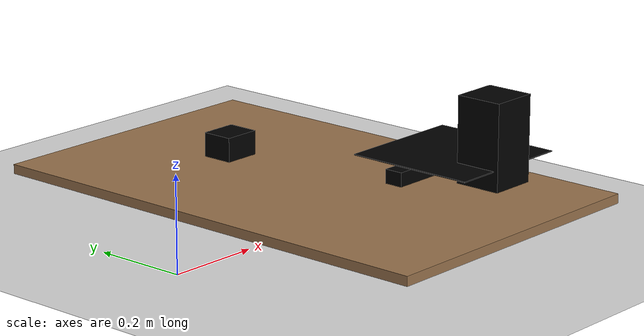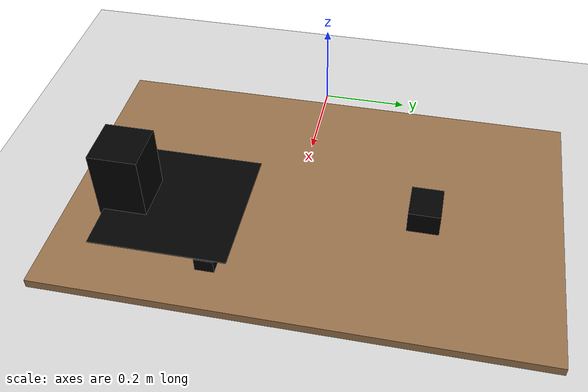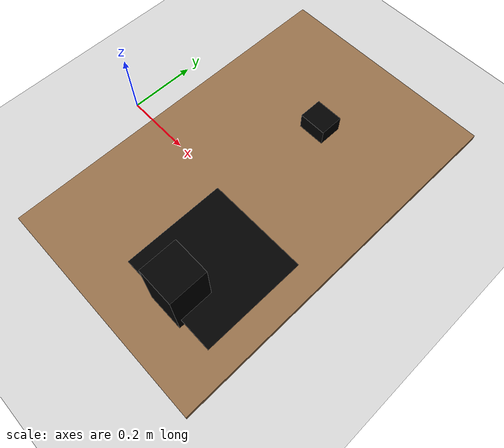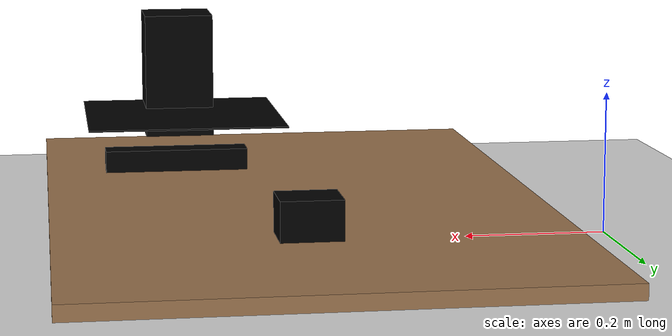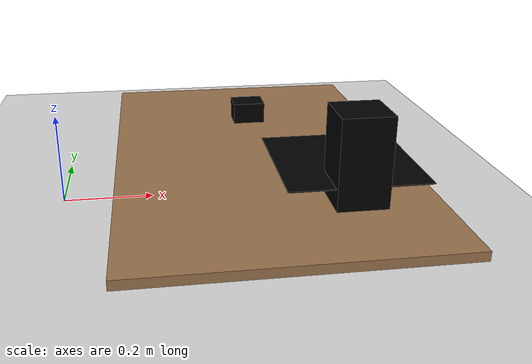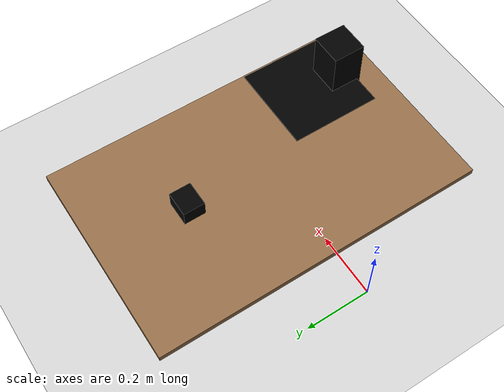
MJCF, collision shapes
<mujoco model="wipe_the_table_gs">
  <compiler meshdir="../../../meshes"/>

  <visual>
    <map znear="0.001"/>
  </visual>

  <asset>
    <!-- meshdir resolved to assets/meshes/ via robotiq.xml compiler -->
    <mesh name="blue_duck_part_000" file="wipe_the_table/blue_duck/part_000.obj"/>
    <mesh name="blue_duck_part_001" file="wipe_the_table/blue_duck/part_001.obj"/>
    <mesh name="blue_duck_part_002" file="wipe_the_table/blue_duck/part_002.obj"/>
    <mesh name="blue_duck_part_003" file="wipe_the_table/blue_duck/part_003.obj"/>
    <mesh name="blue_duck_part_004" file="wipe_the_table/blue_duck/part_004.obj"/>
    <mesh name="blue_duck_part_005" file="wipe_the_table/blue_duck/part_005.obj"/>
    <mesh name="blue_duck_part_006" file="wipe_the_table/blue_duck/part_006.obj"/>
    <mesh name="blue_duck_part_007" file="wipe_the_table/blue_duck/part_007.obj"/>
    <mesh name="blue_duck_part_008" file="wipe_the_table/blue_duck/part_008.obj"/>
    <mesh name="blue_duck_part_009" file="wipe_the_table/blue_duck/part_009.obj"/>
    <mesh name="blue_duck_part_010" file="wipe_the_table/blue_duck/part_010.obj"/>
    <mesh name="blue_duck_part_011" file="wipe_the_table/blue_duck/part_011.obj"/>
    <mesh name="blue_duck_part_012" file="wipe_the_table/blue_duck/part_012.obj"/>
    <mesh name="blue_duck_part_013" file="wipe_the_table/blue_duck/part_013.obj"/>
    <mesh name="blue_duck_part_014" file="wipe_the_table/blue_duck/part_014.obj"/>
    <mesh name="blue_duck_part_015" file="wipe_the_table/blue_duck/part_015.obj"/>
    <mesh name="blue_duck_part_016" file="wipe_the_table/blue_duck/part_016.obj"/>
    <mesh name="blue_duck_part_017" file="wipe_the_table/blue_duck/part_017.obj"/>
    <mesh name="blue_duck_part_018" file="wipe_the_table/blue_duck/part_018.obj"/>
    <mesh name="blue_duck_part_019" file="wipe_the_table/blue_duck/part_019.obj"/>
    <mesh name="blue_duck_part_020" file="wipe_the_table/blue_duck/part_020.obj"/>
    <mesh name="blue_duck_part_021" file="wipe_the_table/blue_duck/part_021.obj"/>
    <mesh name="blue_duck_part_022" file="wipe_the_table/blue_duck/part_022.obj"/>
    <mesh name="blue_duck_part_023" file="wipe_the_table/blue_duck/part_023.obj"/>
    <mesh name="blue_duck_part_024" file="wipe_the_table/blue_duck/part_024.obj"/>
    <mesh name="blue_duck_part_025" file="wipe_the_table/blue_duck/part_025.obj"/>
    <mesh name="blue_duck_part_026" file="wipe_the_table/blue_duck/part_026.obj"/>
    <mesh name="blue_duck_part_027" file="wipe_the_table/blue_duck/part_027.obj"/>
    <mesh name="blue_duck_part_028" file="wipe_the_table/blue_duck/part_028.obj"/>
    <mesh name="blue_duck_part_029" file="wipe_the_table/blue_duck/part_029.obj"/>
    <mesh name="blue_duck_part_030" file="wipe_the_table/blue_duck/part_030.obj"/>
    <mesh name="chicken_doll_part_000" file="wipe_the_table/chicken_doll/part_000.obj"/>
    <mesh name="chicken_doll_part_001" file="wipe_the_table/chicken_doll/part_001.obj"/>
    <mesh name="chicken_doll_part_002" file="wipe_the_table/chicken_doll/part_002.obj"/>
    <mesh name="chicken_doll_part_003" file="wipe_the_table/chicken_doll/part_003.obj"/>
    <mesh name="chicken_doll_part_004" file="wipe_the_table/chicken_doll/part_004.obj"/>
    <mesh name="chicken_doll_part_005" file="wipe_the_table/chicken_doll/part_005.obj"/>
    <mesh name="chicken_doll_part_006" file="wipe_the_table/chicken_doll/part_006.obj"/>
    <mesh name="chicken_doll_part_007" file="wipe_the_table/chicken_doll/part_007.obj"/>
    <mesh name="chicken_doll_part_008" file="wipe_the_table/chicken_doll/part_008.obj"/>
    <mesh name="chicken_doll_part_009" file="wipe_the_table/chicken_doll/part_009.obj"/>
    <mesh name="chicken_doll_part_010" file="wipe_the_table/chicken_doll/part_010.obj"/>
    <mesh name="chicken_doll_part_011" file="wipe_the_table/chicken_doll/part_011.obj"/>
    <mesh name="chicken_doll_part_012" file="wipe_the_table/chicken_doll/part_012.obj"/>
    <mesh name="chicken_doll_part_013" file="wipe_the_table/chicken_doll/part_013.obj"/>
    <mesh name="chicken_doll_part_014" file="wipe_the_table/chicken_doll/part_014.obj"/>
    <mesh name="chicken_doll_part_015" file="wipe_the_table/chicken_doll/part_015.obj"/>
    <mesh name="chicken_doll_part_016" file="wipe_the_table/chicken_doll/part_016.obj"/>
    <mesh name="chicken_doll_part_017" file="wipe_the_table/chicken_doll/part_017.obj"/>
    <mesh name="chicken_doll_part_018" file="wipe_the_table/chicken_doll/part_018.obj"/>
    <mesh name="chicken_doll_part_019" file="wipe_the_table/chicken_doll/part_019.obj"/>
    <mesh name="chicken_doll_part_020" file="wipe_the_table/chicken_doll/part_020.obj"/>
    <mesh name="chicken_doll_part_021" file="wipe_the_table/chicken_doll/part_021.obj"/>
    <mesh name="chicken_doll_part_022" file="wipe_the_table/chicken_doll/part_022.obj"/>
    <mesh name="chicken_doll_part_023" file="wipe_the_table/chicken_doll/part_023.obj"/>
    <mesh name="chicken_doll_part_024" file="wipe_the_table/chicken_doll/part_024.obj"/>
    <mesh name="chicken_doll_part_025" file="wipe_the_table/chicken_doll/part_025.obj"/>
    <mesh name="chicken_doll_part_026" file="wipe_the_table/chicken_doll/part_026.obj"/>
    <mesh name="chicken_doll_part_027" file="wipe_the_table/chicken_doll/part_027.obj"/>
    <mesh name="chicken_doll_part_028" file="wipe_the_table/chicken_doll/part_028.obj"/>
    <mesh name="chicken_doll_part_029" file="wipe_the_table/chicken_doll/part_029.obj"/>
    <mesh name="chicken_doll_part_030" file="wipe_the_table/chicken_doll/part_030.obj"/>
    <mesh name="dog_part_000" file="wipe_the_table/dog/part_000.obj"/>
    <mesh name="dog_part_001" file="wipe_the_table/dog/part_001.obj"/>
    <mesh name="dog_part_002" file="wipe_the_table/dog/part_002.obj"/>
    <mesh name="dog_part_003" file="wipe_the_table/dog/part_003.obj"/>
    <mesh name="dog_part_004" file="wipe_the_table/dog/part_004.obj"/>
    <mesh name="dog_part_005" file="wipe_the_table/dog/part_005.obj"/>
    <mesh name="dog_part_006" file="wipe_the_table/dog/part_006.obj"/>
    <mesh name="dog_part_007" file="wipe_the_table/dog/part_007.obj"/>
    <mesh name="dog_part_008" file="wipe_the_table/dog/part_008.obj"/>
    <mesh name="dog_part_009" file="wipe_the_table/dog/part_009.obj"/>
    <mesh name="dog_part_010" file="wipe_the_table/dog/part_010.obj"/>
    <mesh name="dog_part_011" file="wipe_the_table/dog/part_011.obj"/>
    <mesh name="dog_part_012" file="wipe_the_table/dog/part_012.obj"/>
    <mesh name="dog_part_013" file="wipe_the_table/dog/part_013.obj"/>
    <mesh name="dog_part_014" file="wipe_the_table/dog/part_014.obj"/>
    <mesh name="dog_part_015" file="wipe_the_table/dog/part_015.obj"/>
    <mesh name="dog_part_016" file="wipe_the_table/dog/part_016.obj"/>
    <mesh name="dog_part_017" file="wipe_the_table/dog/part_017.obj"/>
    <mesh name="dog_part_018" file="wipe_the_table/dog/part_018.obj"/>
    <mesh name="dog_part_019" file="wipe_the_table/dog/part_019.obj"/>
    <mesh name="dog_part_020" file="wipe_the_table/dog/part_020.obj"/>
    <mesh name="dog_part_021" file="wipe_the_table/dog/part_021.obj"/>
    <mesh name="dog_part_022" file="wipe_the_table/dog/part_022.obj"/>
    <mesh name="dog_part_023" file="wipe_the_table/dog/part_023.obj"/>
    <mesh name="dog_part_024" file="wipe_the_table/dog/part_024.obj"/>
    <mesh name="dog_part_025" file="wipe_the_table/dog/part_025.obj"/>
    <mesh name="dog_part_026" file="wipe_the_table/dog/part_026.obj"/>
    <mesh name="dog_part_027" file="wipe_the_table/dog/part_027.obj"/>
    <mesh name="dog_part_028" file="wipe_the_table/dog/part_028.obj"/>
    <mesh name="dog_part_029" file="wipe_the_table/dog/part_029.obj"/>
    <mesh name="dog_part_030" file="wipe_the_table/dog/part_030.obj"/>
    <mesh name="dog_part_031" file="wipe_the_table/dog/part_031.obj"/>
    <mesh name="white_box_part_000" file="wipe_the_table/white_box/part_000.obj"/>
    <mesh name="white_box_part_001" file="wipe_the_table/white_box/part_001.obj"/>
    <mesh name="white_box_part_002" file="wipe_the_table/white_box/part_002.obj"/>
    <mesh name="white_box_part_003" file="wipe_the_table/white_box/part_003.obj"/>
    <mesh name="white_box_part_004" file="wipe_the_table/white_box/part_004.obj"/>
    <mesh name="white_box_part_005" file="wipe_the_table/white_box/part_005.obj"/>
    <mesh name="white_box_part_006" file="wipe_the_table/white_box/part_006.obj"/>
    <mesh name="white_box_part_007" file="wipe_the_table/white_box/part_007.obj"/>
    <mesh name="white_box_part_008" file="wipe_the_table/white_box/part_008.obj"/>
    <mesh name="white_box_part_009" file="wipe_the_table/white_box/part_009.obj"/>
    <mesh name="white_box_part_010" file="wipe_the_table/white_box/part_010.obj"/>
    <mesh name="white_box_part_011" file="wipe_the_table/white_box/part_011.obj"/>
    <mesh name="white_box_part_012" file="wipe_the_table/white_box/part_012.obj"/>
    <mesh name="white_box_part_013" file="wipe_the_table/white_box/part_013.obj"/>
    <mesh name="white_box_part_014" file="wipe_the_table/white_box/part_014.obj"/>
    <mesh name="white_box_part_015" file="wipe_the_table/white_box/part_015.obj"/>
    <mesh name="white_box_part_016" file="wipe_the_table/white_box/part_016.obj"/>
    <mesh name="white_box_part_017" file="wipe_the_table/white_box/part_017.obj"/>
    <mesh name="white_box_part_018" file="wipe_the_table/white_box/part_018.obj"/>
    <mesh name="white_box_part_019" file="wipe_the_table/white_box/part_019.obj"/>
    <mesh name="white_box_part_020" file="wipe_the_table/white_box/part_020.obj"/>
    <mesh name="white_box_part_021" file="wipe_the_table/white_box/part_021.obj"/>
    <mesh name="white_box_part_022" file="wipe_the_table/white_box/part_022.obj"/>
    <mesh name="white_box_part_023" file="wipe_the_table/white_box/part_023.obj"/>
    <mesh name="white_box_part_024" file="wipe_the_table/white_box/part_024.obj"/>
    <mesh name="white_box_part_025" file="wipe_the_table/white_box/part_025.obj"/>
    <mesh name="white_box_part_026" file="wipe_the_table/white_box/part_026.obj"/>
    <mesh name="white_box_part_027" file="wipe_the_table/white_box/part_027.obj"/>
    <mesh name="white_box_part_028" file="wipe_the_table/white_box/part_028.obj"/>
    <mesh name="white_box_part_029" file="wipe_the_table/white_box/part_029.obj"/>
    <mesh name="white_box_part_030" file="wipe_the_table/white_box/part_030.obj"/>
    <mesh name="white_box_part_031" file="wipe_the_table/white_box/part_031.obj"/>
    <mesh name="yellow_brush_part_000" file="wipe_the_table/yellow_brush/part_000.obj"/>
    <mesh name="yellow_brush_part_001" file="wipe_the_table/yellow_brush/part_001.obj"/>
    <mesh name="yellow_brush_part_002" file="wipe_the_table/yellow_brush/part_002.obj"/>
    <mesh name="yellow_brush_part_003" file="wipe_the_table/yellow_brush/part_003.obj"/>
    <mesh name="yellow_brush_part_004" file="wipe_the_table/yellow_brush/part_004.obj"/>
    <mesh name="yellow_brush_part_005" file="wipe_the_table/yellow_brush/part_005.obj"/>
    <mesh name="yellow_brush_part_006" file="wipe_the_table/yellow_brush/part_006.obj"/>
    <mesh name="yellow_brush_part_007" file="wipe_the_table/yellow_brush/part_007.obj"/>
    <mesh name="yellow_brush_part_008" file="wipe_the_table/yellow_brush/part_008.obj"/>
    <mesh name="yellow_brush_part_009" file="wipe_the_table/yellow_brush/part_009.obj"/>
    <mesh name="yellow_brush_part_010" file="wipe_the_table/yellow_brush/part_010.obj"/>
    <mesh name="yellow_brush_part_011" file="wipe_the_table/yellow_brush/part_011.obj"/>
    <mesh name="yellow_brush_part_012" file="wipe_the_table/yellow_brush/part_012.obj"/>
    <mesh name="yellow_brush_part_013" file="wipe_the_table/yellow_brush/part_013.obj"/>
    <mesh name="yellow_brush_part_014" file="wipe_the_table/yellow_brush/part_014.obj"/>
    <mesh name="yellow_brush_part_015" file="wipe_the_table/yellow_brush/part_015.obj"/>
    <mesh name="yellow_brush_part_016" file="wipe_the_table/yellow_brush/part_016.obj"/>
    <mesh name="yellow_brush_part_017" file="wipe_the_table/yellow_brush/part_017.obj"/>
    <mesh name="yellow_brush_part_018" file="wipe_the_table/yellow_brush/part_018.obj"/>
    <mesh name="yellow_brush_part_019" file="wipe_the_table/yellow_brush/part_019.obj"/>
    <mesh name="yellow_brush_part_020" file="wipe_the_table/yellow_brush/part_020.obj"/>
    <mesh name="yellow_brush_part_021" file="wipe_the_table/yellow_brush/part_021.obj"/>
    <mesh name="yellow_brush_part_022" file="wipe_the_table/yellow_brush/part_022.obj"/>
    <mesh name="yellow_brush_part_023" file="wipe_the_table/yellow_brush/part_023.obj"/>
    <mesh name="yellow_brush_part_024" file="wipe_the_table/yellow_brush/part_024.obj"/>
    <mesh name="yellow_brush_part_025" file="wipe_the_table/yellow_brush/part_025.obj"/>
    <mesh name="yellow_brush_part_026" file="wipe_the_table/yellow_brush/part_026.obj"/>
    <mesh name="yellow_brush_part_027" file="wipe_the_table/yellow_brush/part_027.obj"/>
    <mesh name="yellow_brush_part_028" file="wipe_the_table/yellow_brush/part_028.obj"/>
    <mesh name="yellow_brush_part_029" file="wipe_the_table/yellow_brush/part_029.obj"/>
    <mesh name="yellow_brush_part_030" file="wipe_the_table/yellow_brush/part_030.obj"/>
    <mesh name="yellow_brush_part_031" file="wipe_the_table/yellow_brush/part_031.obj"/>
    <mesh name="transparent_tape_paper_part_000" file="wipe_the_table/transparent_tape_paper/part_000.obj"/>
    <mesh name="transparent_tape_paper_part_001" file="wipe_the_table/transparent_tape_paper/part_001.obj"/>
    <mesh name="transparent_tape_paper_part_002" file="wipe_the_table/transparent_tape_paper/part_002.obj"/>
    <mesh name="transparent_tape_paper_part_003" file="wipe_the_table/transparent_tape_paper/part_003.obj"/>
    <mesh name="transparent_tape_paper_part_004" file="wipe_the_table/transparent_tape_paper/part_004.obj"/>
    <mesh name="transparent_tape_paper_part_005" file="wipe_the_table/transparent_tape_paper/part_005.obj"/>
    <mesh name="transparent_tape_paper_part_006" file="wipe_the_table/transparent_tape_paper/part_006.obj"/>
    <mesh name="transparent_tape_paper_part_007" file="wipe_the_table/transparent_tape_paper/part_007.obj"/>
    <mesh name="transparent_tape_paper_part_008" file="wipe_the_table/transparent_tape_paper/part_008.obj"/>
    <mesh name="transparent_tape_paper_part_009" file="wipe_the_table/transparent_tape_paper/part_009.obj"/>
    <mesh name="transparent_tape_paper_part_010" file="wipe_the_table/transparent_tape_paper/part_010.obj"/>
    <mesh name="transparent_tape_paper_part_011" file="wipe_the_table/transparent_tape_paper/part_011.obj"/>
    <mesh name="transparent_tape_paper_part_012" file="wipe_the_table/transparent_tape_paper/part_012.obj"/>
    <mesh name="transparent_tape_paper_part_013" file="wipe_the_table/transparent_tape_paper/part_013.obj"/>
    <mesh name="transparent_tape_paper_part_014" file="wipe_the_table/transparent_tape_paper/part_014.obj"/>
    <mesh name="transparent_tape_paper_part_015" file="wipe_the_table/transparent_tape_paper/part_015.obj"/>
    <mesh name="transparent_tape_paper_part_016" file="wipe_the_table/transparent_tape_paper/part_016.obj"/>
    <mesh name="transparent_tape_paper_part_017" file="wipe_the_table/transparent_tape_paper/part_017.obj"/>
    <mesh name="transparent_tape_paper_part_018" file="wipe_the_table/transparent_tape_paper/part_018.obj"/>
    <mesh name="transparent_tape_paper_part_019" file="wipe_the_table/transparent_tape_paper/part_019.obj"/>
    <mesh name="transparent_tape_paper_part_020" file="wipe_the_table/transparent_tape_paper/part_020.obj"/>
    <mesh name="transparent_tape_paper_part_021" file="wipe_the_table/transparent_tape_paper/part_021.obj"/>
    <mesh name="transparent_tape_paper_part_022" file="wipe_the_table/transparent_tape_paper/part_022.obj"/>
    <mesh name="transparent_tape_paper_part_023" file="wipe_the_table/transparent_tape_paper/part_023.obj"/>
    <mesh name="transparent_tape_paper_part_024" file="wipe_the_table/transparent_tape_paper/part_024.obj"/>
    <mesh name="transparent_tape_paper_part_025" file="wipe_the_table/transparent_tape_paper/part_025.obj"/>

    <material name="blue_duck_mat" rgba="0.1 0.3 0.9 1" reflectance="0.2"/>
    <material name="chicken_doll_mat" rgba="0.95 0.85 0.2 1" reflectance="0.2"/>
    <material name="dog_mat" rgba="0.7 0.5 0.3 1" reflectance="0.2"/>
    <material name="white_box_mat" rgba="0.9 0.9 0.9 1" reflectance="0.2"/>
    <material name="yellow_brush_mat" rgba="0.95 0.85 0.1 1" reflectance="0.2"/>
    <material name="transparent_tape_paper_mat" rgba="0.8 0.8 0.9 0.7" reflectance="0.2"/>
  </asset>

  <worldbody>
    <light name="demo_light" pos="0 0 1.5" dir="0 0 -1"/>
    <geom name="floor" type="plane" size="2 2 0.1" rgba="0.85 0.85 0.85 1"/>

    <!-- Table matches background GS coordinate frame (table30_05_wipe_the_table).
         center z=0.0642, half-height=0.01 → top surface z=0.0742.              -->
    <geom name="table" pos="0.45 0.06 0.0642" size="0.33 0.525 0.01" type="box"
          contype="1" conaffinity="1" rgba="0.6 0.45 0.3 1"/>

    <!-- BLUE DUCK -->
    <body name="blue_duck_gs" pos="0.462898 0.295108 0.0998">
      <freejoint name="blue_duck_joint"/>
      <body name="blue_duck" pos="0 0 0">
      <geom name="blue_duck_vis_000" type="mesh" mesh="blue_duck_part_000" material="blue_duck_mat" quat="0.441243 0.887355 0.133118 0.013612" density="0" contype="0" conaffinity="0" group="1"/>
      <geom name="blue_duck_vis_001" type="mesh" mesh="blue_duck_part_001" material="blue_duck_mat" quat="0.441243 0.887355 0.133118 0.013612" density="0" contype="0" conaffinity="0" group="1"/>
      <geom name="blue_duck_vis_002" type="mesh" mesh="blue_duck_part_002" material="blue_duck_mat" quat="0.441243 0.887355 0.133118 0.013612" density="0" contype="0" conaffinity="0" group="1"/>
      <geom name="blue_duck_vis_003" type="mesh" mesh="blue_duck_part_003" material="blue_duck_mat" quat="0.441243 0.887355 0.133118 0.013612" density="0" contype="0" conaffinity="0" group="1"/>
      <geom name="blue_duck_vis_004" type="mesh" mesh="blue_duck_part_004" material="blue_duck_mat" quat="0.441243 0.887355 0.133118 0.013612" density="0" contype="0" conaffinity="0" group="1"/>
      <geom name="blue_duck_vis_005" type="mesh" mesh="blue_duck_part_005" material="blue_duck_mat" quat="0.441243 0.887355 0.133118 0.013612" density="0" contype="0" conaffinity="0" group="1"/>
      <geom name="blue_duck_vis_006" type="mesh" mesh="blue_duck_part_006" material="blue_duck_mat" quat="0.441243 0.887355 0.133118 0.013612" density="0" contype="0" conaffinity="0" group="1"/>
      <geom name="blue_duck_vis_007" type="mesh" mesh="blue_duck_part_007" material="blue_duck_mat" quat="0.441243 0.887355 0.133118 0.013612" density="0" contype="0" conaffinity="0" group="1"/>
      <geom name="blue_duck_vis_008" type="mesh" mesh="blue_duck_part_008" material="blue_duck_mat" quat="0.441243 0.887355 0.133118 0.013612" density="0" contype="0" conaffinity="0" group="1"/>
      <geom name="blue_duck_vis_009" type="mesh" mesh="blue_duck_part_009" material="blue_duck_mat" quat="0.441243 0.887355 0.133118 0.013612" density="0" contype="0" conaffinity="0" group="1"/>
      <geom name="blue_duck_vis_010" type="mesh" mesh="blue_duck_part_010" material="blue_duck_mat" quat="0.441243 0.887355 0.133118 0.013612" density="0" contype="0" conaffinity="0" group="1"/>
      <geom name="blue_duck_vis_011" type="mesh" mesh="blue_duck_part_011" material="blue_duck_mat" quat="0.441243 0.887355 0.133118 0.013612" density="0" contype="0" conaffinity="0" group="1"/>
      <geom name="blue_duck_vis_012" type="mesh" mesh="blue_duck_part_012" material="blue_duck_mat" quat="0.441243 0.887355 0.133118 0.013612" density="0" contype="0" conaffinity="0" group="1"/>
      <geom name="blue_duck_vis_013" type="mesh" mesh="blue_duck_part_013" material="blue_duck_mat" quat="0.441243 0.887355 0.133118 0.013612" density="0" contype="0" conaffinity="0" group="1"/>
      <geom name="blue_duck_vis_014" type="mesh" mesh="blue_duck_part_014" material="blue_duck_mat" quat="0.441243 0.887355 0.133118 0.013612" density="0" contype="0" conaffinity="0" group="1"/>
      <geom name="blue_duck_vis_015" type="mesh" mesh="blue_duck_part_015" material="blue_duck_mat" quat="0.441243 0.887355 0.133118 0.013612" density="0" contype="0" conaffinity="0" group="1"/>
      <geom name="blue_duck_vis_016" type="mesh" mesh="blue_duck_part_016" material="blue_duck_mat" quat="0.441243 0.887355 0.133118 0.013612" density="0" contype="0" conaffinity="0" group="1"/>
      <geom name="blue_duck_vis_017" type="mesh" mesh="blue_duck_part_017" material="blue_duck_mat" quat="0.441243 0.887355 0.133118 0.013612" density="0" contype="0" conaffinity="0" group="1"/>
      <geom name="blue_duck_vis_018" type="mesh" mesh="blue_duck_part_018" material="blue_duck_mat" quat="0.441243 0.887355 0.133118 0.013612" density="0" contype="0" conaffinity="0" group="1"/>
      <geom name="blue_duck_vis_019" type="mesh" mesh="blue_duck_part_019" material="blue_duck_mat" quat="0.441243 0.887355 0.133118 0.013612" density="0" contype="0" conaffinity="0" group="1"/>
      <geom name="blue_duck_vis_020" type="mesh" mesh="blue_duck_part_020" material="blue_duck_mat" quat="0.441243 0.887355 0.133118 0.013612" density="0" contype="0" conaffinity="0" group="1"/>
      <geom name="blue_duck_vis_021" type="mesh" mesh="blue_duck_part_021" material="blue_duck_mat" quat="0.441243 0.887355 0.133118 0.013612" density="0" contype="0" conaffinity="0" group="1"/>
      <geom name="blue_duck_vis_022" type="mesh" mesh="blue_duck_part_022" material="blue_duck_mat" quat="0.441243 0.887355 0.133118 0.013612" density="0" contype="0" conaffinity="0" group="1"/>
      <geom name="blue_duck_vis_023" type="mesh" mesh="blue_duck_part_023" material="blue_duck_mat" quat="0.441243 0.887355 0.133118 0.013612" density="0" contype="0" conaffinity="0" group="1"/>
      <geom name="blue_duck_vis_024" type="mesh" mesh="blue_duck_part_024" material="blue_duck_mat" quat="0.441243 0.887355 0.133118 0.013612" density="0" contype="0" conaffinity="0" group="1"/>
      <geom name="blue_duck_vis_025" type="mesh" mesh="blue_duck_part_025" material="blue_duck_mat" quat="0.441243 0.887355 0.133118 0.013612" density="0" contype="0" conaffinity="0" group="1"/>
      <geom name="blue_duck_vis_026" type="mesh" mesh="blue_duck_part_026" material="blue_duck_mat" quat="0.441243 0.887355 0.133118 0.013612" density="0" contype="0" conaffinity="0" group="1"/>
      <geom name="blue_duck_vis_027" type="mesh" mesh="blue_duck_part_027" material="blue_duck_mat" quat="0.441243 0.887355 0.133118 0.013612" density="0" contype="0" conaffinity="0" group="1"/>
      <geom name="blue_duck_vis_028" type="mesh" mesh="blue_duck_part_028" material="blue_duck_mat" quat="0.441243 0.887355 0.133118 0.013612" density="0" contype="0" conaffinity="0" group="1"/>
      <geom name="blue_duck_vis_029" type="mesh" mesh="blue_duck_part_029" material="blue_duck_mat" quat="0.441243 0.887355 0.133118 0.013612" density="0" contype="0" conaffinity="0" group="1"/>
      <geom name="blue_duck_vis_030" type="mesh" mesh="blue_duck_part_030" material="blue_duck_mat" quat="0.441243 0.887355 0.133118 0.013612" density="0" contype="0" conaffinity="0" group="1"/>
      <geom name="blue_duck_col" type="box" size="0.04 0.034 0.026" mass="0.1" rgba="0 0 0 0" contype="1" conaffinity="1"/>
        <site name="blue_duck_site" pos="0 0 0" size="0.004" rgba="1 0 0 0"/>
      </body>
    </body>

    <!-- CHICKEN DOLL -->
    <!-- DOG -->
    <body name="dog_gs" pos="0.5820 -0.3015 0.2">
      <body name="dog" pos="0 0 0">
      <geom name="dog_vis_000" type="mesh" mesh="dog_part_000" material="dog_mat" quat="0.9968 -0.0083 0.0054 0.0797" density="0" contype="0" conaffinity="0" group="1"/>
      <geom name="dog_vis_001" type="mesh" mesh="dog_part_001" material="dog_mat" quat="0.9968 -0.0083 0.0054 0.0797" density="0" contype="0" conaffinity="0" group="1"/>
      <geom name="dog_vis_002" type="mesh" mesh="dog_part_002" material="dog_mat" quat="0.9968 -0.0083 0.0054 0.0797" density="0" contype="0" conaffinity="0" group="1"/>
      <geom name="dog_vis_003" type="mesh" mesh="dog_part_003" material="dog_mat" quat="0.9968 -0.0083 0.0054 0.0797" density="0" contype="0" conaffinity="0" group="1"/>
      <geom name="dog_vis_004" type="mesh" mesh="dog_part_004" material="dog_mat" quat="0.9968 -0.0083 0.0054 0.0797" density="0" contype="0" conaffinity="0" group="1"/>
      <geom name="dog_vis_005" type="mesh" mesh="dog_part_005" material="dog_mat" quat="0.9968 -0.0083 0.0054 0.0797" density="0" contype="0" conaffinity="0" group="1"/>
      <geom name="dog_vis_006" type="mesh" mesh="dog_part_006" material="dog_mat" quat="0.9968 -0.0083 0.0054 0.0797" density="0" contype="0" conaffinity="0" group="1"/>
      <geom name="dog_vis_007" type="mesh" mesh="dog_part_007" material="dog_mat" quat="0.9968 -0.0083 0.0054 0.0797" density="0" contype="0" conaffinity="0" group="1"/>
      <geom name="dog_vis_008" type="mesh" mesh="dog_part_008" material="dog_mat" quat="0.9968 -0.0083 0.0054 0.0797" density="0" contype="0" conaffinity="0" group="1"/>
      <geom name="dog_vis_009" type="mesh" mesh="dog_part_009" material="dog_mat" quat="0.9968 -0.0083 0.0054 0.0797" density="0" contype="0" conaffinity="0" group="1"/>
      <geom name="dog_vis_010" type="mesh" mesh="dog_part_010" material="dog_mat" quat="0.9968 -0.0083 0.0054 0.0797" density="0" contype="0" conaffinity="0" group="1"/>
      <geom name="dog_vis_011" type="mesh" mesh="dog_part_011" material="dog_mat" quat="0.9968 -0.0083 0.0054 0.0797" density="0" contype="0" conaffinity="0" group="1"/>
      <geom name="dog_vis_012" type="mesh" mesh="dog_part_012" material="dog_mat" quat="0.9968 -0.0083 0.0054 0.0797" density="0" contype="0" conaffinity="0" group="1"/>
      <geom name="dog_vis_013" type="mesh" mesh="dog_part_013" material="dog_mat" quat="0.9968 -0.0083 0.0054 0.0797" density="0" contype="0" conaffinity="0" group="1"/>
      <geom name="dog_vis_014" type="mesh" mesh="dog_part_014" material="dog_mat" quat="0.9968 -0.0083 0.0054 0.0797" density="0" contype="0" conaffinity="0" group="1"/>
      <geom name="dog_vis_015" type="mesh" mesh="dog_part_015" material="dog_mat" quat="0.9968 -0.0083 0.0054 0.0797" density="0" contype="0" conaffinity="0" group="1"/>
      <geom name="dog_vis_016" type="mesh" mesh="dog_part_016" material="dog_mat" quat="0.9968 -0.0083 0.0054 0.0797" density="0" contype="0" conaffinity="0" group="1"/>
      <geom name="dog_vis_017" type="mesh" mesh="dog_part_017" material="dog_mat" quat="0.9968 -0.0083 0.0054 0.0797" density="0" contype="0" conaffinity="0" group="1"/>
      <geom name="dog_vis_018" type="mesh" mesh="dog_part_018" material="dog_mat" quat="0.9968 -0.0083 0.0054 0.0797" density="0" contype="0" conaffinity="0" group="1"/>
      <geom name="dog_vis_019" type="mesh" mesh="dog_part_019" material="dog_mat" quat="0.9968 -0.0083 0.0054 0.0797" density="0" contype="0" conaffinity="0" group="1"/>
      <geom name="dog_vis_020" type="mesh" mesh="dog_part_020" material="dog_mat" quat="0.9968 -0.0083 0.0054 0.0797" density="0" contype="0" conaffinity="0" group="1"/>
      <geom name="dog_vis_021" type="mesh" mesh="dog_part_021" material="dog_mat" quat="0.9968 -0.0083 0.0054 0.0797" density="0" contype="0" conaffinity="0" group="1"/>
      <geom name="dog_vis_022" type="mesh" mesh="dog_part_022" material="dog_mat" quat="0.9968 -0.0083 0.0054 0.0797" density="0" contype="0" conaffinity="0" group="1"/>
      <geom name="dog_vis_023" type="mesh" mesh="dog_part_023" material="dog_mat" quat="0.9968 -0.0083 0.0054 0.0797" density="0" contype="0" conaffinity="0" group="1"/>
      <geom name="dog_vis_024" type="mesh" mesh="dog_part_024" material="dog_mat" quat="0.9968 -0.0083 0.0054 0.0797" density="0" contype="0" conaffinity="0" group="1"/>
      <geom name="dog_vis_025" type="mesh" mesh="dog_part_025" material="dog_mat" quat="0.9968 -0.0083 0.0054 0.0797" density="0" contype="0" conaffinity="0" group="1"/>
      <geom name="dog_vis_026" type="mesh" mesh="dog_part_026" material="dog_mat" quat="0.9968 -0.0083 0.0054 0.0797" density="0" contype="0" conaffinity="0" group="1"/>
      <geom name="dog_vis_027" type="mesh" mesh="dog_part_027" material="dog_mat" quat="0.9968 -0.0083 0.0054 0.0797" density="0" contype="0" conaffinity="0" group="1"/>
      <geom name="dog_vis_028" type="mesh" mesh="dog_part_028" material="dog_mat" quat="0.9968 -0.0083 0.0054 0.0797" density="0" contype="0" conaffinity="0" group="1"/>
      <geom name="dog_vis_029" type="mesh" mesh="dog_part_029" material="dog_mat" quat="0.9968 -0.0083 0.0054 0.0797" density="0" contype="0" conaffinity="0" group="1"/>
      <geom name="dog_vis_030" type="mesh" mesh="dog_part_030" material="dog_mat" quat="0.9968 -0.0083 0.0054 0.0797" density="0" contype="0" conaffinity="0" group="1"/>
      <geom name="dog_vis_031" type="mesh" mesh="dog_part_031" material="dog_mat" quat="0.9968 -0.0083 0.0054 0.0797" density="0" contype="0" conaffinity="0" group="1"/>
      <geom name="dog_col" type="box" size="0.05 0.05 0.09" mass="0.5" rgba="0 0 0 0" contype="1" conaffinity="1"/>
        <site name="dog_site" pos="0 0 0" size="0.004" rgba="1 0 0 0"/>
      </body>
    </body>
    <!-- WHITE BOX -->
    <body name="white_box_gs" pos="0.582006 -0.20156 0.151185">
      <body name="white_box" pos="0 0 0">
      <geom name="white_box_vis_000" type="mesh" mesh="white_box_part_000" material="white_box_mat" quat="0.9997 0.0010 -0.0005 0.0251" density="0" contype="0" conaffinity="0" group="1"/>
      <geom name="white_box_vis_001" type="mesh" mesh="white_box_part_001" material="white_box_mat" quat="0.9997 0.0010 -0.0005 0.0251" density="0" contype="0" conaffinity="0" group="1"/>
      <geom name="white_box_vis_002" type="mesh" mesh="white_box_part_002" material="white_box_mat" quat="0.9997 0.0010 -0.0005 0.0251" density="0" contype="0" conaffinity="0" group="1"/>
      <geom name="white_box_vis_003" type="mesh" mesh="white_box_part_003" material="white_box_mat" quat="0.9997 0.0010 -0.0005 0.0251" density="0" contype="0" conaffinity="0" group="1"/>
      <geom name="white_box_vis_004" type="mesh" mesh="white_box_part_004" material="white_box_mat" quat="0.9997 0.0010 -0.0005 0.0251" density="0" contype="0" conaffinity="0" group="1"/>
      <geom name="white_box_vis_005" type="mesh" mesh="white_box_part_005" material="white_box_mat" quat="0.9997 0.0010 -0.0005 0.0251" density="0" contype="0" conaffinity="0" group="1"/>
      <geom name="white_box_vis_006" type="mesh" mesh="white_box_part_006" material="white_box_mat" quat="0.9997 0.0010 -0.0005 0.0251" density="0" contype="0" conaffinity="0" group="1"/>
      <geom name="white_box_vis_007" type="mesh" mesh="white_box_part_007" material="white_box_mat" quat="0.9997 0.0010 -0.0005 0.0251" density="0" contype="0" conaffinity="0" group="1"/>
      <geom name="white_box_vis_008" type="mesh" mesh="white_box_part_008" material="white_box_mat" quat="0.9997 0.0010 -0.0005 0.0251" density="0" contype="0" conaffinity="0" group="1"/>
      <geom name="white_box_vis_009" type="mesh" mesh="white_box_part_009" material="white_box_mat" quat="0.9997 0.0010 -0.0005 0.0251" density="0" contype="0" conaffinity="0" group="1"/>
      <geom name="white_box_vis_010" type="mesh" mesh="white_box_part_010" material="white_box_mat" quat="0.9997 0.0010 -0.0005 0.0251" density="0" contype="0" conaffinity="0" group="1"/>
      <geom name="white_box_vis_011" type="mesh" mesh="white_box_part_011" material="white_box_mat" quat="0.9997 0.0010 -0.0005 0.0251" density="0" contype="0" conaffinity="0" group="1"/>
      <geom name="white_box_vis_012" type="mesh" mesh="white_box_part_012" material="white_box_mat" quat="0.9997 0.0010 -0.0005 0.0251" density="0" contype="0" conaffinity="0" group="1"/>
      <geom name="white_box_vis_013" type="mesh" mesh="white_box_part_013" material="white_box_mat" quat="0.9997 0.0010 -0.0005 0.0251" density="0" contype="0" conaffinity="0" group="1"/>
      <geom name="white_box_vis_014" type="mesh" mesh="white_box_part_014" material="white_box_mat" quat="0.9997 0.0010 -0.0005 0.0251" density="0" contype="0" conaffinity="0" group="1"/>
      <geom name="white_box_vis_015" type="mesh" mesh="white_box_part_015" material="white_box_mat" quat="0.9997 0.0010 -0.0005 0.0251" density="0" contype="0" conaffinity="0" group="1"/>
      <geom name="white_box_vis_016" type="mesh" mesh="white_box_part_016" material="white_box_mat" quat="0.9997 0.0010 -0.0005 0.0251" density="0" contype="0" conaffinity="0" group="1"/>
      <geom name="white_box_vis_017" type="mesh" mesh="white_box_part_017" material="white_box_mat" quat="0.9997 0.0010 -0.0005 0.0251" density="0" contype="0" conaffinity="0" group="1"/>
      <geom name="white_box_vis_018" type="mesh" mesh="white_box_part_018" material="white_box_mat" quat="0.9997 0.0010 -0.0005 0.0251" density="0" contype="0" conaffinity="0" group="1"/>
      <geom name="white_box_vis_019" type="mesh" mesh="white_box_part_019" material="white_box_mat" quat="0.9997 0.0010 -0.0005 0.0251" density="0" contype="0" conaffinity="0" group="1"/>
      <geom name="white_box_vis_020" type="mesh" mesh="white_box_part_020" material="white_box_mat" quat="0.9997 0.0010 -0.0005 0.0251" density="0" contype="0" conaffinity="0" group="1"/>
      <geom name="white_box_vis_021" type="mesh" mesh="white_box_part_021" material="white_box_mat" quat="0.9997 0.0010 -0.0005 0.0251" density="0" contype="0" conaffinity="0" group="1"/>
      <geom name="white_box_vis_022" type="mesh" mesh="white_box_part_022" material="white_box_mat" quat="0.9997 0.0010 -0.0005 0.0251" density="0" contype="0" conaffinity="0" group="1"/>
      <geom name="white_box_vis_023" type="mesh" mesh="white_box_part_023" material="white_box_mat" quat="0.9997 0.0010 -0.0005 0.0251" density="0" contype="0" conaffinity="0" group="1"/>
      <geom name="white_box_vis_024" type="mesh" mesh="white_box_part_024" material="white_box_mat" quat="0.9997 0.0010 -0.0005 0.0251" density="0" contype="0" conaffinity="0" group="1"/>
      <geom name="white_box_vis_025" type="mesh" mesh="white_box_part_025" material="white_box_mat" quat="0.9997 0.0010 -0.0005 0.0251" density="0" contype="0" conaffinity="0" group="1"/>
      <geom name="white_box_vis_026" type="mesh" mesh="white_box_part_026" material="white_box_mat" quat="0.9997 0.0010 -0.0005 0.0251" density="0" contype="0" conaffinity="0" group="1"/>
      <geom name="white_box_vis_027" type="mesh" mesh="white_box_part_027" material="white_box_mat" quat="0.9997 0.0010 -0.0005 0.0251" density="0" contype="0" conaffinity="0" group="1"/>
      <geom name="white_box_vis_028" type="mesh" mesh="white_box_part_028" material="white_box_mat" quat="0.9997 0.0010 -0.0005 0.0251" density="0" contype="0" conaffinity="0" group="1"/>
      <geom name="white_box_vis_029" type="mesh" mesh="white_box_part_029" material="white_box_mat" quat="0.9997 0.0010 -0.0005 0.0251" density="0" contype="0" conaffinity="0" group="1"/>
      <geom name="white_box_vis_030" type="mesh" mesh="white_box_part_030" material="white_box_mat" quat="0.9997 0.0010 -0.0005 0.0251" density="0" contype="0" conaffinity="0" group="1"/>
      <geom name="white_box_vis_031" type="mesh" mesh="white_box_part_031" material="white_box_mat" quat="0.9997 0.0010 -0.0005 0.0251" density="0" contype="0" conaffinity="0" group="1"/>
      <geom name="white_box_col" type="box" size="0.14 0.14 0.001" mass="0.5" rgba="0 0 0 0" contype="1" conaffinity="1"/>
        <site name="white_box_site" pos="0 0 0" size="0.004" rgba="1 0 0 0"/>
      </body>
    </body>
    <!-- YELLOW BRUSH -->
    <body name="yellow_brush_gs" pos="0.597517 -0.117931 0.100882">
      <body name="yellow_brush" pos="0 0 0">
      <geom name="yellow_brush_vis_000" type="mesh" mesh="yellow_brush_part_000" material="yellow_brush_mat" quat="0.359153 -0.901677 0.212907 0.112504" density="0" contype="0" conaffinity="0" group="1"/>
      <geom name="yellow_brush_vis_001" type="mesh" mesh="yellow_brush_part_001" material="yellow_brush_mat" quat="0.359153 -0.901677 0.212907 0.112504" density="0" contype="0" conaffinity="0" group="1"/>
      <geom name="yellow_brush_vis_002" type="mesh" mesh="yellow_brush_part_002" material="yellow_brush_mat" quat="0.359153 -0.901677 0.212907 0.112504" density="0" contype="0" conaffinity="0" group="1"/>
      <geom name="yellow_brush_vis_003" type="mesh" mesh="yellow_brush_part_003" material="yellow_brush_mat" quat="0.359153 -0.901677 0.212907 0.112504" density="0" contype="0" conaffinity="0" group="1"/>
      <geom name="yellow_brush_vis_004" type="mesh" mesh="yellow_brush_part_004" material="yellow_brush_mat" quat="0.359153 -0.901677 0.212907 0.112504" density="0" contype="0" conaffinity="0" group="1"/>
      <geom name="yellow_brush_vis_005" type="mesh" mesh="yellow_brush_part_005" material="yellow_brush_mat" quat="0.359153 -0.901677 0.212907 0.112504" density="0" contype="0" conaffinity="0" group="1"/>
      <geom name="yellow_brush_vis_006" type="mesh" mesh="yellow_brush_part_006" material="yellow_brush_mat" quat="0.359153 -0.901677 0.212907 0.112504" density="0" contype="0" conaffinity="0" group="1"/>
      <geom name="yellow_brush_vis_007" type="mesh" mesh="yellow_brush_part_007" material="yellow_brush_mat" quat="0.359153 -0.901677 0.212907 0.112504" density="0" contype="0" conaffinity="0" group="1"/>
      <geom name="yellow_brush_vis_008" type="mesh" mesh="yellow_brush_part_008" material="yellow_brush_mat" quat="0.359153 -0.901677 0.212907 0.112504" density="0" contype="0" conaffinity="0" group="1"/>
      <geom name="yellow_brush_vis_009" type="mesh" mesh="yellow_brush_part_009" material="yellow_brush_mat" quat="0.359153 -0.901677 0.212907 0.112504" density="0" contype="0" conaffinity="0" group="1"/>
      <geom name="yellow_brush_vis_010" type="mesh" mesh="yellow_brush_part_010" material="yellow_brush_mat" quat="0.359153 -0.901677 0.212907 0.112504" density="0" contype="0" conaffinity="0" group="1"/>
      <geom name="yellow_brush_vis_011" type="mesh" mesh="yellow_brush_part_011" material="yellow_brush_mat" quat="0.359153 -0.901677 0.212907 0.112504" density="0" contype="0" conaffinity="0" group="1"/>
      <geom name="yellow_brush_vis_012" type="mesh" mesh="yellow_brush_part_012" material="yellow_brush_mat" quat="0.359153 -0.901677 0.212907 0.112504" density="0" contype="0" conaffinity="0" group="1"/>
      <geom name="yellow_brush_vis_013" type="mesh" mesh="yellow_brush_part_013" material="yellow_brush_mat" quat="0.359153 -0.901677 0.212907 0.112504" density="0" contype="0" conaffinity="0" group="1"/>
      <geom name="yellow_brush_vis_014" type="mesh" mesh="yellow_brush_part_014" material="yellow_brush_mat" quat="0.359153 -0.901677 0.212907 0.112504" density="0" contype="0" conaffinity="0" group="1"/>
      <geom name="yellow_brush_vis_015" type="mesh" mesh="yellow_brush_part_015" material="yellow_brush_mat" quat="0.359153 -0.901677 0.212907 0.112504" density="0" contype="0" conaffinity="0" group="1"/>
      <geom name="yellow_brush_vis_016" type="mesh" mesh="yellow_brush_part_016" material="yellow_brush_mat" quat="0.359153 -0.901677 0.212907 0.112504" density="0" contype="0" conaffinity="0" group="1"/>
      <geom name="yellow_brush_vis_017" type="mesh" mesh="yellow_brush_part_017" material="yellow_brush_mat" quat="0.359153 -0.901677 0.212907 0.112504" density="0" contype="0" conaffinity="0" group="1"/>
      <geom name="yellow_brush_vis_018" type="mesh" mesh="yellow_brush_part_018" material="yellow_brush_mat" quat="0.359153 -0.901677 0.212907 0.112504" density="0" contype="0" conaffinity="0" group="1"/>
      <geom name="yellow_brush_vis_019" type="mesh" mesh="yellow_brush_part_019" material="yellow_brush_mat" quat="0.359153 -0.901677 0.212907 0.112504" density="0" contype="0" conaffinity="0" group="1"/>
      <geom name="yellow_brush_vis_020" type="mesh" mesh="yellow_brush_part_020" material="yellow_brush_mat" quat="0.359153 -0.901677 0.212907 0.112504" density="0" contype="0" conaffinity="0" group="1"/>
      <geom name="yellow_brush_vis_021" type="mesh" mesh="yellow_brush_part_021" material="yellow_brush_mat" quat="0.359153 -0.901677 0.212907 0.112504" density="0" contype="0" conaffinity="0" group="1"/>
      <geom name="yellow_brush_vis_022" type="mesh" mesh="yellow_brush_part_022" material="yellow_brush_mat" quat="0.359153 -0.901677 0.212907 0.112504" density="0" contype="0" conaffinity="0" group="1"/>
      <geom name="yellow_brush_vis_023" type="mesh" mesh="yellow_brush_part_023" material="yellow_brush_mat" quat="0.359153 -0.901677 0.212907 0.112504" density="0" contype="0" conaffinity="0" group="1"/>
      <geom name="yellow_brush_vis_024" type="mesh" mesh="yellow_brush_part_024" material="yellow_brush_mat" quat="0.359153 -0.901677 0.212907 0.112504" density="0" contype="0" conaffinity="0" group="1"/>
      <geom name="yellow_brush_vis_025" type="mesh" mesh="yellow_brush_part_025" material="yellow_brush_mat" quat="0.359153 -0.901677 0.212907 0.112504" density="0" contype="0" conaffinity="0" group="1"/>
      <geom name="yellow_brush_vis_026" type="mesh" mesh="yellow_brush_part_026" material="yellow_brush_mat" quat="0.359153 -0.901677 0.212907 0.112504" density="0" contype="0" conaffinity="0" group="1"/>
      <geom name="yellow_brush_vis_027" type="mesh" mesh="yellow_brush_part_027" material="yellow_brush_mat" quat="0.359153 -0.901677 0.212907 0.112504" density="0" contype="0" conaffinity="0" group="1"/>
      <geom name="yellow_brush_vis_028" type="mesh" mesh="yellow_brush_part_028" material="yellow_brush_mat" quat="0.359153 -0.901677 0.212907 0.112504" density="0" contype="0" conaffinity="0" group="1"/>
      <geom name="yellow_brush_vis_029" type="mesh" mesh="yellow_brush_part_029" material="yellow_brush_mat" quat="0.359153 -0.901677 0.212907 0.112504" density="0" contype="0" conaffinity="0" group="1"/>
      <geom name="yellow_brush_vis_030" type="mesh" mesh="yellow_brush_part_030" material="yellow_brush_mat" quat="0.359153 -0.901677 0.212907 0.112504" density="0" contype="0" conaffinity="0" group="1"/>
      <geom name="yellow_brush_vis_031" type="mesh" mesh="yellow_brush_part_031" material="yellow_brush_mat" quat="0.359153 -0.901677 0.212907 0.112504" density="0" contype="0" conaffinity="0" group="1"/>
      <geom name="yellow_brush_col" type="box" size="0.1 0.02 0.015" mass="0.5" rgba="0 0 0 0" contype="1" conaffinity="1"/>
        <site name="yellow_brush_site" pos="0 0 0" size="0.004" rgba="1 0 0 0"/>
      </body>
    </body>
    <!-- TRANSPARENT TAPE PAPER -->

    <!-- Camera matching background GS coordinate frame (table30_05_wipe_the_table) -->
    <camera name="env1_cam" pos="1.35 0.022 0.65"
            xyaxes="-0.029 1.000 0.000 -0.488 -0.014 0.872" fovy="43.365"/>
    <camera name="env0_cam" pos="0.488 1.0 0.6"
            xyaxes="-0.9994 0.0338 0.0000 -0.0107 -0.3168 0.9484" fovy="43.365"/>
  </worldbody>

</mujoco>
